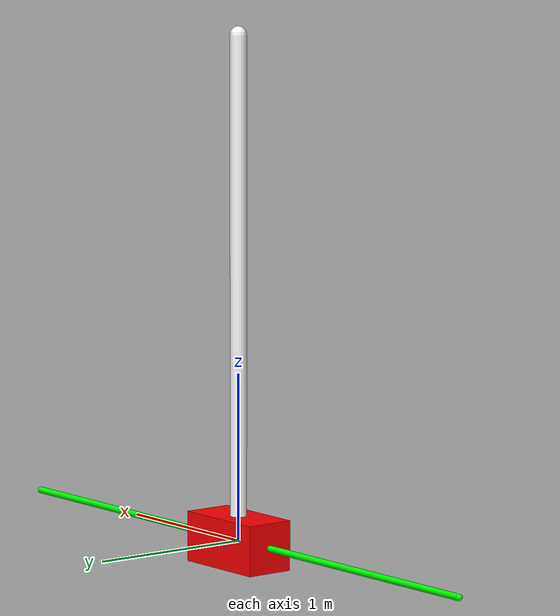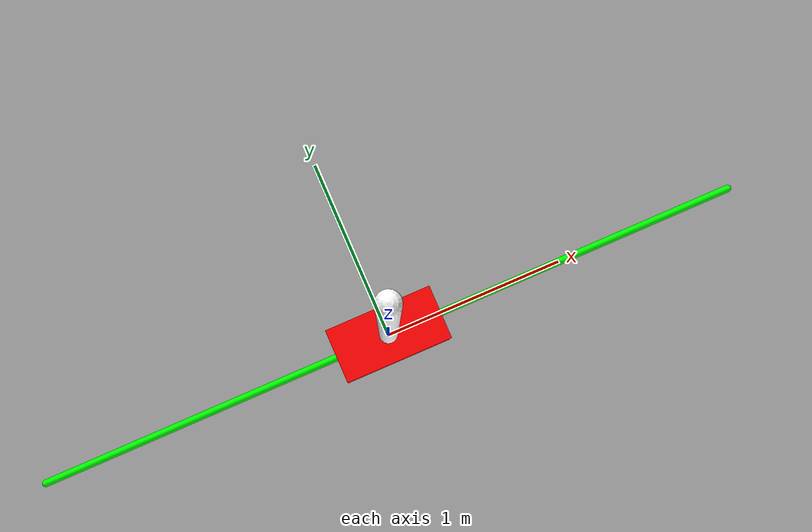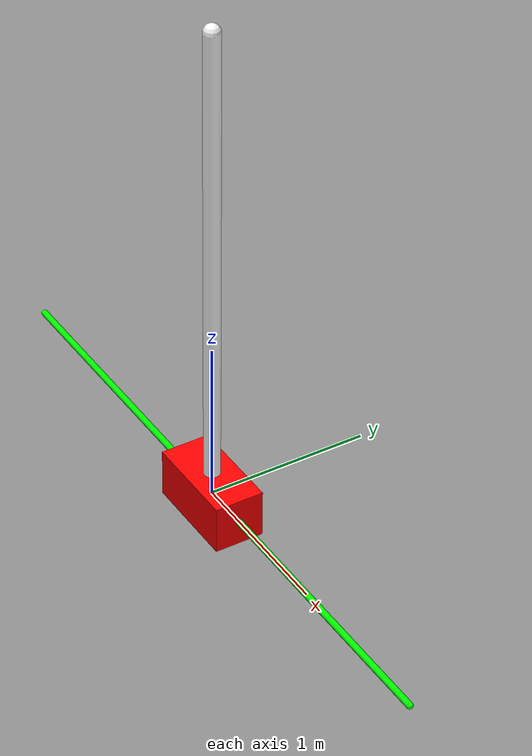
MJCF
<mujoco model="cartpole">
  <compiler coordinate="local"/>
  <option gravity="0 0 -9.81" timestep="0.001" integrator="RK4"/>

  <default>
    <joint damping="0"/>
    <geom contype="0" conaffinity="0" friction="0 0 0" rgba="0.7 0.7 0.7 1"/>
  </default>

  <worldbody>
    <geom name="rail" type="capsule" fromto="-2 0 0  2 0 0" size="0.02" rgba="0 1 0 1"/>
    <body name="cart" pos="0 0 0">
      <joint name="slider" type="slide" axis="1 0 0" range="-2 2" damping="0.5"/>
      <geom name="cart_geom" type="box" size="0.3 0.15 0.15" mass="6" rgba="1 0 0 1"/>
      <body name="pole" pos="0 0 0">
        <inertial pos="0 0 1.5" mass="0.5" diaginertia="1.5 1.5 0.0001"/>
        <joint name="hinge" type="hinge" axis="0 1 0" damping="0.02"/>
        <geom name="pole_geom" type="capsule" fromto="0 0 0  0 0 3" size="0.05" rgba="1 1 1 1"/>
      </body>
    </body>
  </worldbody>

  <actuator>
    <motor name="cart_motor" joint="slider" gear="1" ctrlrange="-1000 1000"/>
  </actuator>

</mujoco>
